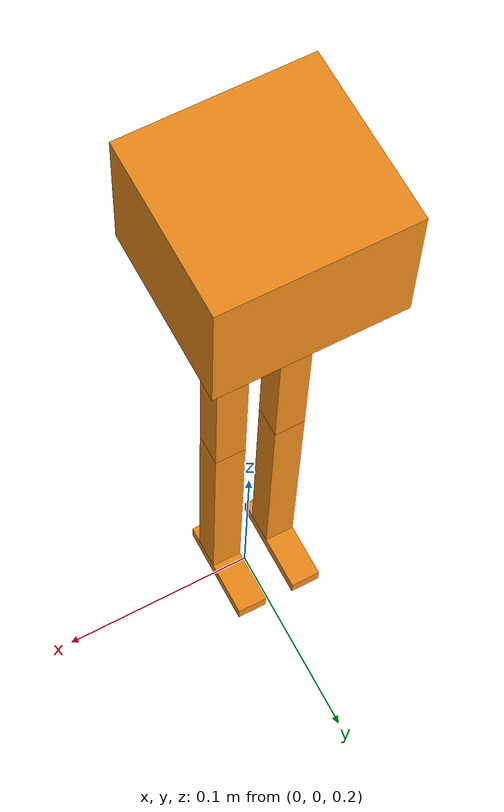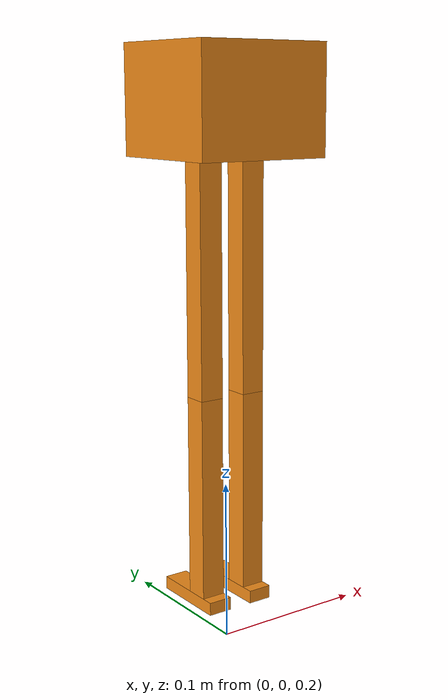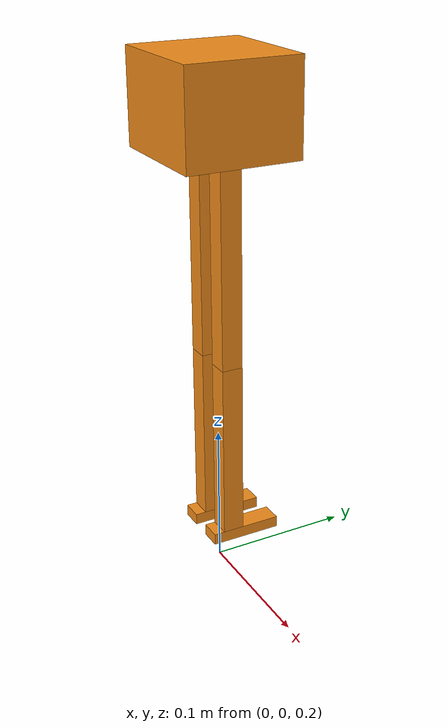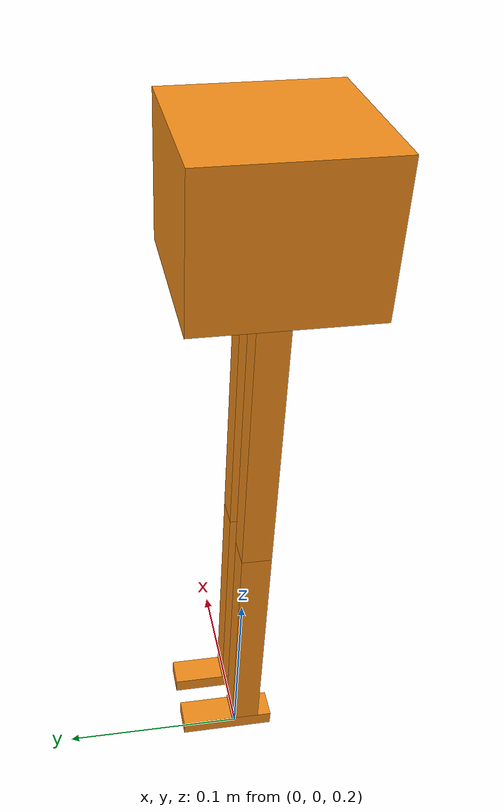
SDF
<sdf version='1.5'>
  <model name='dacbot'>
    <link name='body'>
      <pose frame=''>0 0 0 0 -0 0</pose>
      <inertial>
        <pose frame=''>0 0 0.0325 0 -0 0</pose>
        <mass>0.45</mass>
        <inertia>
          <ixx>0.000398437</ixx>
          <ixy>0</ixy>
          <ixz>0</ixz>
          <iyy>0.000429375</iyy>
          <iyz>0</iyz>
          <izz>0.000510937</izz>
        </inertia>
      </inertial>
      <collision name='body_collision'>
        <pose frame=''>0 0 0.0325 0 -0 0</pose>
        <geometry>
          <box>
            <size>0.085 0.08 0.065</size>
          </box>
        </geometry>
        <surface>
          <contact>
            <ode/>
          </contact>
          <friction>
            <ode/>
          </friction>
        </surface>
      </collision>
      <visual name='body_visual'>
        <pose frame=''>0 0 0.0325 0 -0 0</pose>
        <geometry>
          <box>
            <size>0.085 0.08 0.065</size>
          </box>
        </geometry>
        <material>
          <script>
            <name>Gazebo/Orange</name>
            <uri>file://media/materials/scripts/gazebo.material</uri>
          </script>
        </material>
      </visual>
      <gravity>1</gravity>
      <velocity_decay/>
      <self_collide>0</self_collide>
    </link>
    <link name='left_upper_leg'>
      <pose frame=''>-0.015 0 0 3.14159 1.57079 3.14159</pose>
      <inertial>
        <pose frame=''>0.071 0 0 3.14159 -1.57079 3.14159</pose>
        <mass>0.2</mass>
        <inertia>
          <ixx>0.000339817</ixx>
          <ixy>0</ixy>
          <ixz>0</ixz>
          <iyy>0.000339817</iyy>
          <iyz>0</iyz>
          <izz>7.5e-06</izz>
        </inertia>
      </inertial>
      <collision name='left_upper_leg_collision'>
        <pose frame=''>0.071 0 0 3.14159 -1.57079 3.14159</pose>
        <geometry>
          <box>
            <size>0.015 0.015 0.142</size>
          </box>
        </geometry>
        <surface>
          <contact>
            <ode/>
          </contact>
          <friction>
            <ode>
              <mu>0.2</mu>
              <mu2>0.2</mu2>
            </ode>
          </friction>
        </surface>
      </collision>
      <visual name='left_upper_leg_visual'>
        <pose frame=''>0.071 0 0 3.14159 -1.57079 3.14159</pose>
        <geometry>
          <box>
            <size>0.015 0.015 0.142</size>
          </box>
        </geometry>
        <material>
          <script>
            <name>Gazebo/Orange</name>
            <uri>file://media/materials/scripts/gazebo.material</uri>
          </script>
        </material>
      </visual>
      <gravity>1</gravity>
      <velocity_decay/>
      <self_collide>0</self_collide>
    </link>
    <joint name='left_hip' type='revolute'>
      <child>left_upper_leg</child>
      <parent>body</parent>
      <axis>
        <xyz>1 0 0</xyz>
        <limit>
          <lower>-1e+16</lower>
          <upper>1e+16</upper>
        </limit>
        <dynamics>
          <damping>0.7</damping>
          <friction>0</friction>
          <spring_reference>0</spring_reference>
          <spring_stiffness>0</spring_stiffness>
        </dynamics>
        <use_parent_model_frame>1</use_parent_model_frame>
      </axis>
    </joint>
    <link name='left_lower_leg'>
      <pose frame=''>-0.015 0 -0.142 3.14159 1.57079 3.14159</pose>
      <inertial>
        <pose frame=''>0.0625 0 0 3.14159 -1.57079 3.14159</pose>
        <mass>0.08</mass>
        <inertia>
          <ixx>0.000105667</ixx>
          <ixy>0</ixy>
          <ixz>0</ixz>
          <iyy>0.000105667</iyy>
          <iyz>0</iyz>
          <izz>3e-06</izz>
        </inertia>
      </inertial>
      <collision name='left_lower_leg_collision'>
        <pose frame=''>0.0625 0 0 3.14159 -1.57079 3.14159</pose>
        <geometry>
          <box>
            <size>0.015 0.015 0.125</size>
          </box>
        </geometry>
        <surface>
          <contact>
            <ode/>
          </contact>
          <friction>
            <ode>
              <mu>0.2</mu>
              <mu2>0.2</mu2>
            </ode>
          </friction>
        </surface>
      </collision>
      <visual name='left_lower_leg_visual'>
        <pose frame=''>0.0625 0 0 3.14159 -1.57079 3.14159</pose>
        <geometry>
          <box>
            <size>0.015 0.015 0.125</size>
          </box>
        </geometry>
        <material>
          <script>
            <name>Gazebo/Orange</name>
            <uri>file://media/materials/scripts/gazebo.material</uri>
          </script>
        </material>
      </visual>
      <gravity>1</gravity>
      <velocity_decay/>
      <self_collide>0</self_collide>
    </link>
    <joint name='left_knee' type='revolute'>
      <child>left_lower_leg</child>
      <parent>left_upper_leg</parent>
      <axis>
        <xyz>1 0 0</xyz>
        <limit>
          <lower>-1e+16</lower>
          <upper>1e+16</upper>
        </limit>
        <dynamics>
          <damping>0.7</damping>
          <friction>0</friction>
          <spring_reference>0</spring_reference>
          <spring_stiffness>0</spring_stiffness>
        </dynamics>
        <use_parent_model_frame>1</use_parent_model_frame>
      </axis>
    </joint>
    <link name='left_foot'>
      <pose frame=''>-0.015 0 -0.267 3.14159 1.57079 3.14159</pose>
      <inertial>
        <pose frame=''>0.004 0.01 0 3.14159 -1.57079 3.14159</pose>
        <mass>0.01</mass>
        <inertia>
          <ixx>2.13667e-06</ixx>
          <ixy>0</ixy>
          <ixz>0</ixz>
          <iyy>2.40833e-07</iyy>
          <iyz>0</iyz>
          <izz>2.27083e-06</izz>
        </inertia>
      </inertial>
      <collision name='left_foot_collision'>
        <pose frame=''>0.004 0.01 0 3.14159 -1.57079 3.14159</pose>
        <geometry>
          <box>
            <size>0.015 0.05 0.008</size>
          </box>
        </geometry>
        <surface>
          <contact>
            <ode/>
          </contact>
          <friction>
            <ode>
              <mu>0.2</mu>
              <mu2>0.2</mu2>
            </ode>
          </friction>
        </surface>
      </collision>
      <visual name='left_foot_visual'>
        <pose frame=''>0.004 0.01 0 3.14159 -1.57079 3.14159</pose>
        <geometry>
          <box>
            <size>0.015 0.05 0.008</size>
          </box>
        </geometry>
        <material>
          <script>
            <name>Gazebo/Orange</name>
            <uri>file://media/materials/scripts/gazebo.material</uri>
          </script>
        </material>
      </visual>
      <gravity>1</gravity>
      <velocity_decay/>
      <self_collide>0</self_collide>
    </link>
    <joint name='left_ankle' type='revolute'>
      <child>left_foot</child>
      <parent>left_lower_leg</parent>
      <axis>
        <xyz>1 0 0</xyz>
        <limit>
          <lower>-1e+16</lower>
          <upper>1e+16</upper>
        </limit>
        <dynamics>
          <damping>0.7</damping>
          <friction>0</friction>
          <spring_reference>0</spring_reference>
          <spring_stiffness>0</spring_stiffness>
        </dynamics>
        <use_parent_model_frame>1</use_parent_model_frame>
      </axis>
    </joint>
    <link name='right_upper_leg'>
      <pose frame=''>0.015 0 0 3.14159 1.57079 3.14159</pose>
      <inertial>
        <pose frame=''>0.071 0 0 3.14159 -1.57079 3.14159</pose>
        <mass>0.2</mass>
        <inertia>
          <ixx>0.000339817</ixx>
          <ixy>0</ixy>
          <ixz>0</ixz>
          <iyy>0.000339817</iyy>
          <iyz>0</iyz>
          <izz>7.5e-06</izz>
        </inertia>
      </inertial>
      <collision name='right_upper_leg_collision'>
        <pose frame=''>0.071 0 0 3.14159 -1.57079 3.14159</pose>
        <geometry>
          <box>
            <size>0.015 0.015 0.142</size>
          </box>
        </geometry>
        <surface>
          <contact>
            <ode/>
          </contact>
          <friction>
            <ode>
              <mu>0.2</mu>
              <mu2>0.2</mu2>
            </ode>
          </friction>
        </surface>
      </collision>
      <visual name='right_upper_leg_visual'>
        <pose frame=''>0.071 0 0 3.14159 -1.57079 3.14159</pose>
        <geometry>
          <box>
            <size>0.015 0.015 0.142</size>
          </box>
        </geometry>
        <material>
          <script>
            <name>Gazebo/Orange</name>
            <uri>file://media/materials/scripts/gazebo.material</uri>
          </script>
        </material>
      </visual>
      <gravity>1</gravity>
      <velocity_decay/>
      <self_collide>0</self_collide>
    </link>
    <joint name='right_hip' type='revolute'>
      <child>right_upper_leg</child>
      <parent>body</parent>
      <axis>
        <xyz>1 0 0</xyz>
        <limit>
          <lower>-1e+16</lower>
          <upper>1e+16</upper>
        </limit>
        <dynamics>
          <damping>0.7</damping>
          <friction>0</friction>
          <spring_reference>0</spring_reference>
          <spring_stiffness>0</spring_stiffness>
        </dynamics>
        <use_parent_model_frame>1</use_parent_model_frame>
      </axis>
    </joint>
    <link name='right_lower_leg'>
      <pose frame=''>0.015 0 -0.142 3.14159 1.57079 3.14159</pose>
      <inertial>
        <pose frame=''>0.0625 0 0 3.14159 -1.57079 3.14159</pose>
        <mass>0.08</mass>
        <inertia>
          <ixx>0.000105667</ixx>
          <ixy>0</ixy>
          <ixz>0</ixz>
          <iyy>0.000105667</iyy>
          <iyz>0</iyz>
          <izz>3e-06</izz>
        </inertia>
      </inertial>
      <collision name='right_lower_leg_collision'>
        <pose frame=''>0.0625 0 0 3.14159 -1.57079 3.14159</pose>
        <geometry>
          <box>
            <size>0.015 0.015 0.125</size>
          </box>
        </geometry>
        <surface>
          <contact>
            <ode/>
          </contact>
          <friction>
            <ode>
              <mu>0.2</mu>
              <mu2>0.2</mu2>
            </ode>
          </friction>
        </surface>
      </collision>
      <visual name='right_lower_leg_visual'>
        <pose frame=''>0.0625 0 0 3.14159 -1.57079 3.14159</pose>
        <geometry>
          <box>
            <size>0.015 0.015 0.125</size>
          </box>
        </geometry>
        <material>
          <script>
            <name>Gazebo/Orange</name>
            <uri>file://media/materials/scripts/gazebo.material</uri>
          </script>
        </material>
      </visual>
      <gravity>1</gravity>
      <velocity_decay/>
      <self_collide>0</self_collide>
    </link>
    <joint name='right_knee' type='revolute'>
      <child>right_lower_leg</child>
      <parent>right_upper_leg</parent>
      <axis>
        <xyz>1 0 0</xyz>
        <limit>
          <lower>-1e+16</lower>
          <upper>1e+16</upper>
        </limit>
        <dynamics>
          <damping>0.7</damping>
          <friction>0</friction>
          <spring_reference>0</spring_reference>
          <spring_stiffness>0</spring_stiffness>
        </dynamics>
        <use_parent_model_frame>1</use_parent_model_frame>
      </axis>
    </joint>
    <link name='right_foot'>
      <pose frame=''>0.015 0 -0.267 3.14159 1.57079 3.14159</pose>
      <inertial>
        <pose frame=''>0.004 0.01 0 3.14159 -1.57079 3.14159</pose>
        <mass>0.01</mass>
        <inertia>
          <ixx>2.13667e-06</ixx>
          <ixy>0</ixy>
          <ixz>0</ixz>
          <iyy>2.40833e-07</iyy>
          <iyz>0</iyz>
          <izz>2.27083e-06</izz>
        </inertia>
      </inertial>
      <collision name='right_foot_collision'>
        <pose frame=''>0.004 0.01 0 3.14159 -1.57079 3.14159</pose>
        <geometry>
          <box>
            <size>0.015 0.05 0.008</size>
          </box>
        </geometry>
        <surface>
          <contact>
            <ode/>
          </contact>
          <friction>
            <ode>
              <mu>0.2</mu>
              <mu2>0.2</mu2>
            </ode>
          </friction>
        </surface>
      </collision>
      <visual name='right_foot_visual'>
        <pose frame=''>0.004 0.01 0 3.14159 -1.57079 3.14159</pose>
        <geometry>
          <box>
            <size>0.015 0.05 0.008</size>
          </box>
        </geometry>
        <material>
          <script>
            <name>Gazebo/Orange</name>
            <uri>file://media/materials/scripts/gazebo.material</uri>
          </script>
        </material>
      </visual>
      <gravity>1</gravity>
      <velocity_decay/>
      <self_collide>0</self_collide>
    </link>
    <joint name='right_ankle' type='revolute'>
      <child>right_foot</child>
      <parent>right_lower_leg</parent>
      <axis>
        <xyz>1 0 0</xyz>
        <limit>
          <lower>-1e+16</lower>
          <upper>1e+16</upper>
        </limit>
        <dynamics>
          <damping>0.7</damping>
          <friction>0</friction>
          <spring_reference>0</spring_reference>
          <spring_stiffness>0</spring_stiffness>
        </dynamics>
        <use_parent_model_frame>1</use_parent_model_frame>
      </axis>
    </joint>
    <plugin name='gazebo_ros_control' filename='libgazebo_ros_control.so'>
      <robotNamespace>/dacbot</robotNamespace>
      <robotSimType>gazebo_ros_control/DefaultRobotHWSim</robotSimType>
    </plugin>
    <static>0</static>
    <pose frame=''>0 0 0.5 0 -0 0</pose>
  </model>
</sdf>
